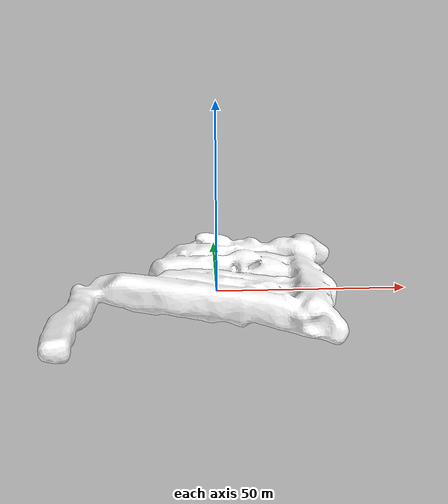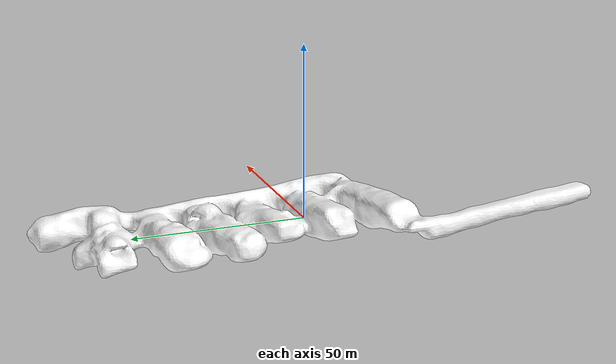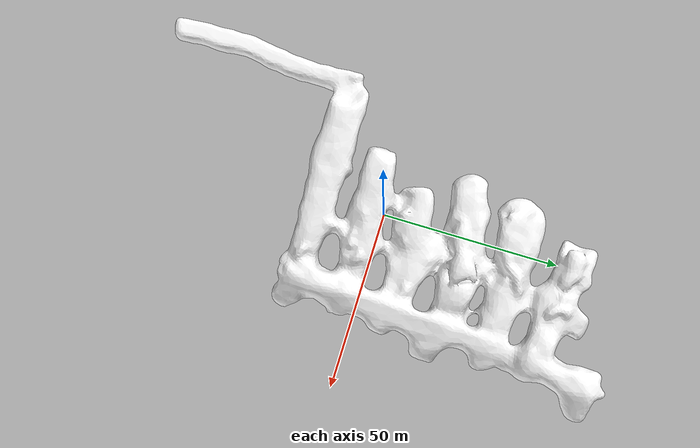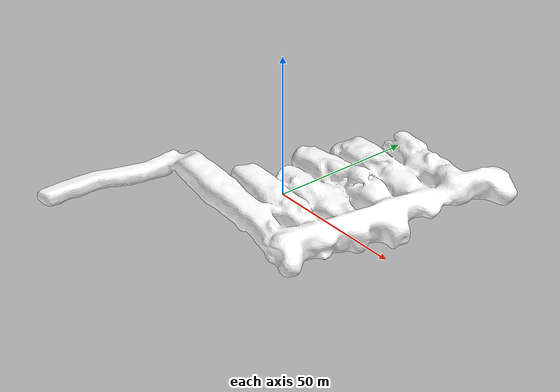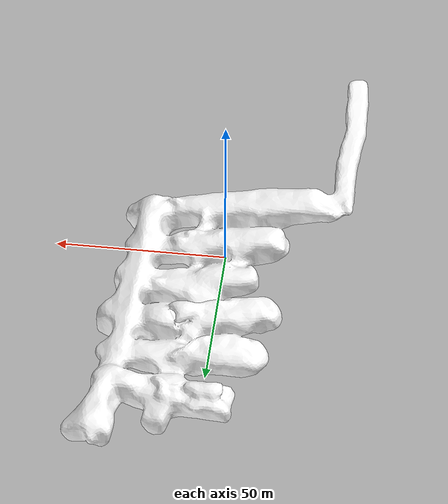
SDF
<?xml version="1.0" ?>
<sdf version="1.6">
  <world name="default">
    <scene>
      <ambient>0.25 0.25 0.25 1</ambient>
      <background>171 205 239 1</background>
      <shadows>false</shadows>
    </scene>
    <gravity>0 0 -9.81</gravity>
        <include>
            <uri>model://sun</uri>
        </include>
        <include>
          <name>mine</name>
          <uri>model://mine</uri>
          <pose>0 0 0  0 0 34</pose>
        </include>

    </world>
</sdf>

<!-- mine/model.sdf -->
<sdf version="1.6">
    <model name="mine">
      <pose frame=''>0 0 0  0 0 0</pose>
      <static>true</static>
      <link name="body">
        <collision name="body_collision">
          <geometry>
            <mesh>
              <uri>model://mine/meshes/Old_mine.dae</uri>
              <scale>1 1 1</scale>
            </mesh>
          </geometry>
        </collision>
        <visual name="body_visual">
          <geometry>
            <mesh>
              <uri>model://mine/meshes/Old_mine.dae</uri>
              <scale>1 1 1</scale>
            </mesh>
          </geometry>
          <material>
          <script>
            <uri>file://media/materials/scripts/gazebo.material</uri>
            <name>Gazebo/Motorway</name>
          </script>
          <ambient>1 1 1 1</ambient>
        </material>
        </visual>
      </link>
      <static>1</static>
    </model>
</sdf>
